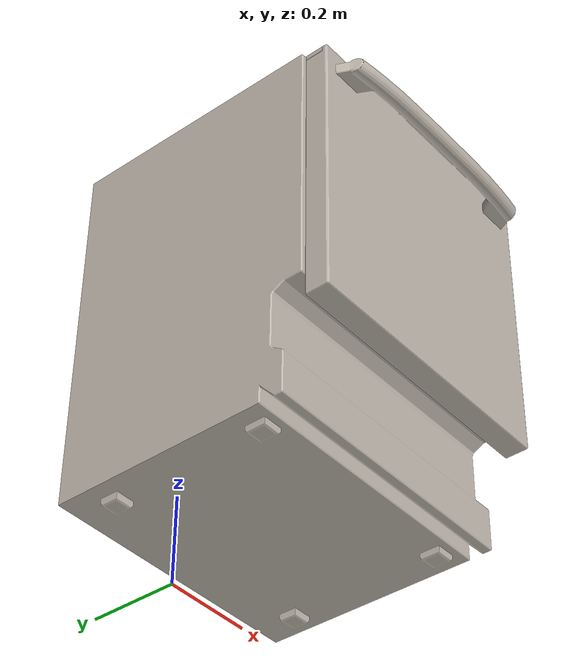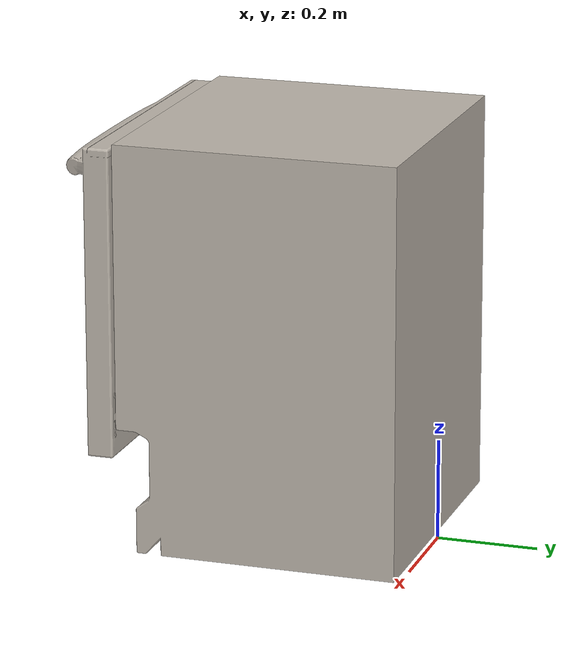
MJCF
<?xml version="1.0" encoding="utf-8"?>
<mujoco model="dishwasher">
  <compiler angle="radian" meshdir="assets" texturedir="assets" autolimits="true"/>
  <asset>
    <texture type="2d" name="basket" file="basket.png"/>
    <texture type="2d" name="body" file="body.png"/>
    <texture type="2d" name="bottom" file="bottom.png"/>
    <texture type="2d" name="door" file="door.png"/>
    <texture type="2d" name="middle" file="middle.png"/>
    <material name="dishwasher" rgba="0.3 0.3 0.3 1"/>
    <material name="basket" texture="basket" rgba="0.3 0.3 0.3 1"/>
    <material name="body" texture="body"/>
    <material name="bottom" texture="bottom"/>
    <material name="door" texture="door"/>
    <material name="middle" texture="middle"/>
    <!-- body -->
    <mesh file="visual/dish_washer_body_001.obj"/>
    <!-- door -->
    <mesh file="visual/dish_washer_door_001.obj"/>
    <mesh file="collision/collision_door_001.obj"/>
    <mesh file="collision/collision_door_003.obj"/>
    <mesh file="collision/collision_door_004.obj"/>
    <mesh file="collision/collision_door_006.obj"/>
    <mesh file="collision/collision_door_007.obj"/>
    <mesh file="collision/collision_door_008.obj"/>
    <mesh file="collision/collision_door_009.obj"/>
    <!-- middle tray -->
    <mesh file="visual/dish_washer_mid_001.obj"/>
    <mesh file="collision/collision_tray_mid_001.obj"/>
    <mesh file="collision/collision_tray_mid_002.obj"/>
    <mesh file="collision/collision_tray_mid_003.obj"/>
    <mesh file="collision/collision_tray_mid_004.obj"/>
    <mesh file="collision/collision_tray_mid_005.obj"/>
    <mesh file="collision/collision_tray_mid_006.obj"/>
    <mesh file="collision/collision_tray_mid_007.obj"/>
    <mesh file="collision/collision_tray_mid_008.obj"/>
    <mesh file="collision/collision_tray_mid_009.obj"/>
    <mesh file="collision/collision_tray_mid_010.obj"/>
    <mesh file="collision/collision_tray_mid_011.obj"/>
    <mesh file="collision/collision_tray_mid_012.obj"/>
    <mesh file="collision/collision_tray_mid_013.obj"/>
    <mesh file="collision/collision_tray_mid_014.obj"/>
    <mesh file="collision/collision_tray_mid_015.obj"/>
    <mesh file="collision/collision_tray_mid_016.obj"/>
    <mesh file="collision/collision_tray_mid_017.obj"/>
    <mesh file="collision/collision_tray_mid_018.obj"/>
    <mesh file="collision/collision_tray_mid_019.obj"/>
    <mesh file="collision/collision_tray_mid_020.obj"/>
    <mesh file="collision/collision_tray_mid_021.obj"/>
    <mesh file="collision/collision_tray_mid_022.obj"/>
    <mesh file="collision/collision_tray_mid_023.obj"/>
    <mesh file="collision/collision_tray_mid_024.obj"/>
    <mesh file="collision/collision_tray_mid_025.obj"/>
    <mesh file="collision/collision_tray_mid_026.obj"/>
    <mesh file="collision/collision_tray_mid_027.obj"/>
    <!-- middle tray plates holder -->
    <mesh file="collision/collision_tray_mid_plates_holder.obj"/>
    <!-- middle tray sprinkler -->
    <mesh file="visual/dish_washer_mid_sprinkle.obj"/>
    <mesh file="collision/collision_dish_washer_mid_sprinkle.obj"/>
    <!-- bottom tray -->
    <mesh file="visual/dish_washer_bottom_001.obj"/>
    <mesh file="collision/collision_tray_001.obj"/>
    <mesh file="collision/collision_tray_002.obj"/>
    <mesh file="collision/collision_tray_003.obj"/>
    <mesh file="collision/collision_tray_004.obj"/>
    <mesh file="collision/collision_tray_005.obj"/>
    <mesh file="collision/collision_tray_006.obj"/>
    <mesh file="collision/collision_tray_007.obj"/>
    <mesh file="collision/collision_tray_008.obj"/>
    <mesh file="collision/collision_tray_009.obj"/>
    <mesh file="collision/collision_tray_010.obj"/>
    <mesh file="collision/collision_tray_011.obj"/>
    <mesh file="collision/collision_tray_012.obj"/>
    <mesh file="collision/collision_tray_013.obj"/>
    <mesh file="collision/collision_tray_014.obj"/>
    <mesh file="collision/collision_tray_015.obj"/>
    <mesh file="collision/collision_tray_016.obj"/>
    <mesh file="collision/collision_tray_017.obj"/>
    <mesh file="collision/collision_tray_018.obj"/>
    <mesh file="collision/collision_tray_019.obj"/>
    <mesh file="collision/collision_tray_020.obj"/>
    <mesh file="collision/collision_tray_021.obj"/>
    <mesh file="collision/collision_tray_022.obj"/>
    <mesh file="collision/collision_tray_023.obj"/>
    <mesh file="collision/collision_tray_024.obj"/>
    <mesh file="collision/collision_tray_025.obj"/>
    <mesh file="collision/collision_tray_026.obj"/>
    <mesh file="collision/collision_tray_027.obj"/>
    <mesh file="collision/collision_tray_028.obj"/>
    <mesh file="collision/collision_tray_029.obj"/>
    <mesh file="collision/collision_tray_030.obj"/>
    <mesh file="collision/collision_tray_031.obj"/>
    <mesh file="collision/collision_tray_032.obj"/>
    <mesh file="collision/collision_tray_033.obj"/>
    <!-- bottom tray wheel -->
    <mesh file="visual/dish_washer_bottom_wheel.obj"/>
    <!-- bottom tray plates holder -->
    <mesh file="visual/dish_washer_bottom_plates_holder_001.obj"/>
    <mesh file="collision/collision_holder_001.obj"/>
    <mesh file="collision/collision_holder_002.obj"/>
    <mesh file="collision/collision_holder_003.obj"/>
    <mesh file="collision/collision_holder_004.obj"/>
    <mesh file="collision/collision_holder_005.obj"/>
    <mesh file="collision/collision_holder_006.obj"/>
    <mesh file="collision/collision_holder_007.obj"/>
    <mesh file="collision/collision_holder_008.obj"/>
    <mesh file="collision/collision_holder_009.obj"/>
    <mesh file="collision/collision_holder_010.obj"/>
    <mesh file="collision/collision_holder_011.obj"/>
    <mesh file="collision/collision_holder_012.obj"/>
    <mesh file="collision/collision_holder_013.obj"/>
    <mesh file="collision/collision_holder_014.obj"/>
    <!-- bottom tray basket -->
    <mesh file="visual/dish_washer_bottom_cuttlery_basket_001.obj"/>
    <mesh file="collision/collision_dish_washer_bottom_basket_001.obj"/>
    <mesh file="collision/collision_dish_washer_bottom_basket_002.obj"/>
    <mesh file="collision/collision_dish_washer_bottom_basket_003.obj"/>
    <mesh file="collision/collision_dish_washer_bottom_basket_004.obj"/>
    <mesh file="collision/collision_dish_washer_bottom_basket_005.obj"/>
    <mesh file="collision/collision_dish_washer_bottom_basket_006.obj"/>
    <mesh file="collision/collision_dish_washer_bottom_basket_007.obj"/>
    <mesh file="collision/collision_dish_washer_bottom_basket_008.obj"/>
    <mesh file="collision/collision_dish_washer_bottom_basket_009.obj"/>
    <mesh file="collision/collision_dish_washer_bottom_basket_010.obj"/>
    <mesh file="collision/collision_dish_washer_bottom_basket_011.obj"/>
    <mesh file="collision/collision_dish_washer_bottom_basket_012.obj"/>
    <mesh file="collision/collision_dish_washer_bottom_basket_013.obj"/>
    <mesh file="collision/collision_dish_washer_bottom_basket_014.obj"/>
    <mesh file="collision/collision_dish_washer_bottom_basket_015.obj"/>
  </asset>
  <default>
    <default class="dishwasher">
      <default class="visual">
        <geom type="mesh" contype="0" conaffinity="0" group="2" mass="0"/>
      </default>
      <default class="collision">
        <geom type="mesh" group="3" friction="0.1" solimp="0.998 0.998 0.001" solref="0.004 1" density="1"/>
      </default>
      <default class="collision_basket">
        <geom type="mesh" group="3" friction="0.1" solimp="0.998 0.998 0.001" solref="0.004 1" density="1"/>
      </default>
      <default class="collision_holder">
        <geom type="mesh" group="3" friction="0.1" solimp="0.998 0.998 0.001" solref="0.004 1" density="1"/>
      </default>
      <site size="0.001" rgba="0.5 0.5 0.5 0.3" group="4"/>
    </default>
  </default>
  <worldbody>
    <body name="dishwasher_body" childclass="dishwasher">
      <geom material="body" mesh="dish_washer_body_001" class="visual" euler="1.5708 0 0"/>
      <geom pos="0 -0.258 0.129" size="0.3 0.258 0.129" type="box" class="collision"/>
      <geom pos="0 -0.278 0.269" size="0.3 0.278 0.011" type="box" class="collision"/>
      <geom pos="0.286 -0.278 0.531" size="0.014 0.278 0.274" type="box" class="collision"/>
      <geom pos="-0.286 -0.278 0.531" size="0.014 0.278 0.274" type="box" class="collision"/>
      <geom pos="0 -0.008 0.531" size="0.3 0.008 0.274" type="box" class="collision"/>
      <geom pos="0 -0.278 0.808" size="0.3 0.278 0.0128" type="box" class="collision"/>
      <body name="door" pos="0 -0.57 0.245" euler="1.5708 0 0">
        <joint name="door_hinge" axis="1 0 0" range="0 1.5708" damping="0.01" solimplimit="0.998 0.998 0.001" solreflimit="0.004 1"/>
        <inertial mass="0.01" pos="0 0 0" quat="1 0 0 0" diaginertia="0.0001 0.0001 0.0001"/>
        <geom material="door" mesh="dish_washer_door_001" class="visual"/>
        <geom pos="0 0.517 0.086" size="0.019 0.28" type="cylinder" class="collision" euler="0 1.5708 0"/>
        <geom pos="0.238 0.517 0.06" size="0.031 0.025 0.014" type="box" class="collision" euler="1.5708 0 0"/>
        <geom pos="-0.238 0.517 0.06" size="0.031 0.025 0.014" type="box" class="collision" euler="1.5708 0 0"/>
        <geom pos="0 0.261 0.03" size="0.295 0.016 0.295" type="box" class="collision" euler="1.5708 0 0"/>
        <geom pos="0 0.546 0.0192" size="0.295 0.02603 0.019" type="box" class="collision" euler="1.5708 0 0"/>
        <geom pos="0 0.0148 0.0192" size="0.295 0.02603 0.0584" type="box" class="collision" euler="1.5708 0 0"/>
        <geom pos="0.275 0.2606 0.0192" size="0.0216 0.02603 0.295" type="box" class="collision" euler="1.5708 0 0"/>
        <geom pos="-0.275 0.2606 0.0192" size="0.0216 0.02603 0.295" type="box" class="collision" euler="1.5708 0 0"/>
        <geom mesh="collision_door_001" class="collision"/>
        <geom mesh="collision_door_003" class="collision"/>
        <geom mesh="collision_door_004" class="collision"/>
        <geom mesh="collision_door_006" class="collision"/>
        <geom mesh="collision_door_007" class="collision"/>
        <geom mesh="collision_door_008" class="collision"/>
        <geom mesh="collision_door_009" class="collision"/>
      </body>
      <body name="tray_mid" pos="0 -0.248 0.6" euler="1.5708 0 0">
        <joint name="tray_mid_linear" type="slide" axis="0 0 1" range="0 0.45" damping="5" solimplimit="0.998 0.998 0.001" solreflimit="0.004 1"/>
        <geom material="middle" mesh="dish_washer_mid_001" class="visual"/>
        <geom mesh="collision_tray_mid_001" class="collision"/>
        <geom mesh="collision_tray_mid_002" class="collision"/>
        <geom mesh="collision_tray_mid_003" class="collision"/>
        <geom mesh="collision_tray_mid_004" class="collision"/>
        <geom mesh="collision_tray_mid_005" class="collision"/>
        <geom mesh="collision_tray_mid_006" class="collision"/>
        <geom mesh="collision_tray_mid_007" class="collision"/>
        <geom mesh="collision_tray_mid_008" class="collision"/>
        <geom mesh="collision_tray_mid_009" class="collision"/>
        <geom mesh="collision_tray_mid_010" class="collision"/>
        <geom mesh="collision_tray_mid_011" class="collision"/>
        <geom mesh="collision_tray_mid_012" class="collision"/>
        <geom mesh="collision_tray_mid_013" class="collision"/>
        <geom mesh="collision_tray_mid_014" class="collision"/>
        <geom mesh="collision_tray_mid_015" class="collision"/>
        <geom mesh="collision_tray_mid_016" class="collision"/>
        <geom mesh="collision_tray_mid_017" class="collision"/>
        <geom mesh="collision_tray_mid_018" class="collision"/>
        <geom mesh="collision_tray_mid_019" class="collision"/>
        <geom mesh="collision_tray_mid_020" class="collision"/>
        <geom mesh="collision_tray_mid_021" class="collision"/>
        <geom mesh="collision_tray_mid_022" class="collision"/>
        <geom mesh="collision_tray_mid_023" class="collision"/>
        <geom mesh="collision_tray_mid_024" class="collision"/>
        <geom mesh="collision_tray_mid_025" class="collision"/>
        <geom mesh="collision_tray_mid_026" class="collision"/>
        <geom mesh="collision_tray_mid_027" class="collision"/>
        <!-- plates holders -->
        <body name="dish_washer_mid_holder_1" pos="0.085 0.0025 0" euler="0 1.5708 0">
          <geom material="dishwasher" mesh="dish_washer_bottom_plates_holder_001" class="visual"/>
          <geom mesh="collision_holder_001" class="collision_holder"/>
          <geom mesh="collision_holder_002" class="collision_holder"/>
          <geom mesh="collision_holder_003" class="collision_holder"/>
          <geom mesh="collision_holder_004" class="collision_holder"/>
          <geom mesh="collision_holder_005" class="collision_holder"/>
          <geom mesh="collision_holder_006" class="collision_holder"/>
          <geom mesh="collision_holder_007" class="collision_holder"/>
          <geom mesh="collision_holder_008" class="collision_holder"/>
          <geom mesh="collision_holder_009" class="collision_holder"/>
          <geom mesh="collision_holder_010" class="collision_holder"/>
          <geom mesh="collision_holder_011" class="collision_holder"/>
          <geom mesh="collision_holder_012" class="collision_holder"/>
          <geom mesh="collision_holder_013" class="collision_holder"/>
          <geom mesh="collision_holder_014" class="collision_holder"/>
          <site name="tray_mid_holder_sites_1_1" pos="-0.165 0.1 0"/>
          <site name="tray_mid_holder_sites_1_2" pos="-0.135 0.1 0"/>
          <site name="tray_mid_holder_sites_1_3" pos="-0.105 0.1 0"/>
          <site name="tray_mid_holder_sites_1_4" pos="-0.075 0.1 0"/>
          <site name="tray_mid_holder_sites_1_5" pos="-0.045 0.1 0"/>
          <site name="tray_mid_holder_sites_1_6" pos="-0.015 0.1 0"/>
          <site name="tray_mid_holder_sites_1_7" pos="0.015 0.1 0"/>
          <site name="tray_mid_holder_sites_1_8" pos="0.045 0.1 0"/>
          <site name="tray_mid_holder_sites_1_9" pos="0.075 0.1 0"/>
          <site name="tray_mid_holder_sites_1_10" pos="0.105 0.1 0"/>
          <site name="tray_mid_holder_sites_1_11" pos="0.135 0.1 0"/>
          <site name="tray_mid_holder_sites_1_12" pos="0.165 0.1 0"/>
        </body>
        <body name="dish_washer_mid_holder_2" pos="-0.085 0.0025 0" euler="0 1.5708 0">
          <geom material="dishwasher" mesh="dish_washer_bottom_plates_holder_001" class="visual"/>
          <geom mesh="collision_holder_001" class="collision_holder"/>
          <geom mesh="collision_holder_002" class="collision_holder"/>
          <geom mesh="collision_holder_003" class="collision_holder"/>
          <geom mesh="collision_holder_004" class="collision_holder"/>
          <geom mesh="collision_holder_005" class="collision_holder"/>
          <geom mesh="collision_holder_006" class="collision_holder"/>
          <geom mesh="collision_holder_007" class="collision_holder"/>
          <geom mesh="collision_holder_008" class="collision_holder"/>
          <geom mesh="collision_holder_009" class="collision_holder"/>
          <geom mesh="collision_holder_010" class="collision_holder"/>
          <geom mesh="collision_holder_011" class="collision_holder"/>
          <geom mesh="collision_holder_012" class="collision_holder"/>
          <geom mesh="collision_holder_013" class="collision_holder"/>
          <geom mesh="collision_holder_014" class="collision_holder"/>
          <site name="tray_mid_holder_sites_2_1" pos="-0.165 0.1 0"/>
          <site name="tray_mid_holder_sites_2_2" pos="-0.135 0.1 0"/>
          <site name="tray_mid_holder_sites_2_3" pos="-0.105 0.1 0"/>
          <site name="tray_mid_holder_sites_2_4" pos="-0.075 0.1 0"/>
          <site name="tray_mid_holder_sites_2_5" pos="-0.045 0.1 0"/>
          <site name="tray_mid_holder_sites_2_6" pos="-0.015 0.1 0"/>
          <site name="tray_mid_holder_sites_2_7" pos="0.015 0.1 0"/>
          <site name="tray_mid_holder_sites_2_8" pos="0.045 0.1 0"/>
          <site name="tray_mid_holder_sites_2_9" pos="0.075 0.1 0"/>
          <site name="tray_mid_holder_sites_2_10" pos="0.105 0.1 0"/>
          <site name="tray_mid_holder_sites_2_11" pos="0.135 0.1 0"/>
          <site name="tray_mid_holder_sites_2_12" pos="0.165 0.1 0"/>
        </body>
        <!-- sprinkler -->
        <body name="tray_mid_sprinkler" pos="0 -0.029338 0">
          <joint name="tray_mid_sprinkler" axis="0 1 0" limited="false" damping="0.001"/>
          <inertial mass="0.01" pos="0 0 0" quat="1 0 0 0" diaginertia="0.001 0.001 0.001"/>
          <geom material="dishwasher" mesh="dish_washer_mid_sprinkle" class="visual"/>
          <geom mesh="collision_dish_washer_mid_sprinkle" class="collision"/>
        </body>
      </body>
      <body name="tray_bottom" pos="0 -0.309 0.35" euler="1.5708 0 0">
        <joint name="tray_bottom_linear" type="slide" axis="0 0 1" range="0 0.5" damping="5" solimplimit="0.998 0.998 0.001" solreflimit="0.004 1"/>
        <geom material="bottom" mesh="dish_washer_bottom_001" class="visual"/>
        <geom mesh="collision_tray_001" class="collision"/>
        <geom mesh="collision_tray_002" class="collision"/>
        <geom mesh="collision_tray_003" class="collision"/>
        <geom mesh="collision_tray_004" class="collision"/>
        <geom mesh="collision_tray_005" class="collision"/>
        <geom mesh="collision_tray_006" class="collision"/>
        <geom mesh="collision_tray_007" class="collision"/>
        <geom mesh="collision_tray_008" class="collision"/>
        <geom mesh="collision_tray_009" class="collision"/>
        <geom mesh="collision_tray_010" class="collision"/>
        <geom mesh="collision_tray_011" class="collision"/>
        <geom mesh="collision_tray_012" class="collision"/>
        <geom mesh="collision_tray_013" class="collision"/>
        <geom mesh="collision_tray_014" class="collision"/>
        <geom mesh="collision_tray_015" class="collision"/>
        <geom mesh="collision_tray_016" class="collision"/>
        <geom mesh="collision_tray_017" class="collision"/>
        <geom mesh="collision_tray_018" class="collision"/>
        <geom mesh="collision_tray_019" class="collision"/>
        <geom mesh="collision_tray_020" class="collision"/>
        <geom mesh="collision_tray_021" class="collision"/>
        <geom mesh="collision_tray_022" class="collision"/>
        <geom mesh="collision_tray_023" class="collision"/>
        <geom mesh="collision_tray_024" class="collision"/>
        <geom mesh="collision_tray_025" class="collision"/>
        <geom mesh="collision_tray_026" class="collision"/>
        <geom mesh="collision_tray_027" class="collision"/>
        <geom mesh="collision_tray_028" class="collision"/>
        <geom mesh="collision_tray_029" class="collision"/>
        <geom mesh="collision_tray_030" class="collision"/>
        <geom mesh="collision_tray_031" class="collision"/>
        <geom mesh="collision_tray_032" class="collision"/>
        <geom mesh="collision_tray_033" class="collision"/>
        <!-- plates holders -->
        <body name="dish_washer_bottom_holder_1" pos="-0.047521 -0.048164 0.145" euler="0.523599 0 0">
          <geom material="dishwasher" mesh="dish_washer_bottom_plates_holder_001" class="visual"/>
          <geom mesh="collision_holder_001" class="collision_holder"/>
          <geom mesh="collision_holder_002" class="collision_holder"/>
          <geom mesh="collision_holder_003" class="collision_holder"/>
          <geom mesh="collision_holder_004" class="collision_holder"/>
          <geom mesh="collision_holder_005" class="collision_holder"/>
          <geom mesh="collision_holder_006" class="collision_holder"/>
          <geom mesh="collision_holder_007" class="collision_holder"/>
          <geom mesh="collision_holder_008" class="collision_holder"/>
          <geom mesh="collision_holder_009" class="collision_holder"/>
          <geom mesh="collision_holder_010" class="collision_holder"/>
          <geom mesh="collision_holder_011" class="collision_holder"/>
          <geom mesh="collision_holder_012" class="collision_holder"/>
          <geom mesh="collision_holder_013" class="collision_holder"/>
          <geom mesh="collision_holder_014" class="collision_holder"/>
        </body>
        <body name="dish_washer_bottom_holder_2" pos="-0.047521 -0.048164 0.088794" euler="-0.523599 0 0">
          <geom material="dishwasher" mesh="dish_washer_bottom_plates_holder_001" class="visual"/>
          <geom mesh="collision_holder_001" class="collision_holder"/>
          <geom mesh="collision_holder_002" class="collision_holder"/>
          <geom mesh="collision_holder_003" class="collision_holder"/>
          <geom mesh="collision_holder_004" class="collision_holder"/>
          <geom mesh="collision_holder_005" class="collision_holder"/>
          <geom mesh="collision_holder_006" class="collision_holder"/>
          <geom mesh="collision_holder_007" class="collision_holder"/>
          <geom mesh="collision_holder_008" class="collision_holder"/>
          <geom mesh="collision_holder_009" class="collision_holder"/>
          <geom mesh="collision_holder_010" class="collision_holder"/>
          <geom mesh="collision_holder_011" class="collision_holder"/>
          <geom mesh="collision_holder_012" class="collision_holder"/>
          <geom mesh="collision_holder_013" class="collision_holder"/>
          <geom mesh="collision_holder_014" class="collision_holder"/>
        </body>
        <body name="dish_washer_bottom_holder_3" pos="-0.047521 -0.048164 -0.1133" euler="0.523599 0 0">
          <geom material="dishwasher" mesh="dish_washer_bottom_plates_holder_001" class="visual"/>
          <geom mesh="collision_holder_001" class="collision_holder"/>
          <geom mesh="collision_holder_002" class="collision_holder"/>
          <geom mesh="collision_holder_003" class="collision_holder"/>
          <geom mesh="collision_holder_004" class="collision_holder"/>
          <geom mesh="collision_holder_005" class="collision_holder"/>
          <geom mesh="collision_holder_006" class="collision_holder"/>
          <geom mesh="collision_holder_007" class="collision_holder"/>
          <geom mesh="collision_holder_008" class="collision_holder"/>
          <geom mesh="collision_holder_009" class="collision_holder"/>
          <geom mesh="collision_holder_010" class="collision_holder"/>
          <geom mesh="collision_holder_011" class="collision_holder"/>
          <geom mesh="collision_holder_012" class="collision_holder"/>
          <geom mesh="collision_holder_013" class="collision_holder"/>
          <geom mesh="collision_holder_014" class="collision_holder"/>
        </body>
        <body name="dish_washer_bottom_holder_4" pos="-0.047521 -0.048164 -0.189036" euler="-0.523599 0 0">
          <geom material="dishwasher" mesh="dish_washer_bottom_plates_holder_001" class="visual"/>
          <geom mesh="collision_holder_001" class="collision_holder"/>
          <geom mesh="collision_holder_002" class="collision_holder"/>
          <geom mesh="collision_holder_003" class="collision_holder"/>
          <geom mesh="collision_holder_004" class="collision_holder"/>
          <geom mesh="collision_holder_005" class="collision_holder"/>
          <geom mesh="collision_holder_006" class="collision_holder"/>
          <geom mesh="collision_holder_007" class="collision_holder"/>
          <geom mesh="collision_holder_008" class="collision_holder"/>
          <geom mesh="collision_holder_009" class="collision_holder"/>
          <geom mesh="collision_holder_010" class="collision_holder"/>
          <geom mesh="collision_holder_011" class="collision_holder"/>
          <geom mesh="collision_holder_012" class="collision_holder"/>
          <geom mesh="collision_holder_013" class="collision_holder"/>
          <geom mesh="collision_holder_014" class="collision_holder"/>
        </body>
        <body name="tray_bottom_holder_sites_1" pos="-0.047521 -0.048164 0.1169">
          <site name="tray_bottom_holder_1_1" pos="-0.165 0.1 0"/>
          <site name="tray_bottom_holder_1_2" pos="-0.135 0.1 0"/>
          <site name="tray_bottom_holder_1_3" pos="-0.105 0.1 0"/>
          <site name="tray_bottom_holder_1_4" pos="-0.075 0.1 0"/>
          <site name="tray_bottom_holder_1_5" pos="-0.045 0.1 0"/>
          <site name="tray_bottom_holder_1_6" pos="-0.015 0.1 0"/>
          <site name="tray_bottom_holder_1_7" pos="0.015 0.1 0"/>
          <site name="tray_bottom_holder_1_8" pos="0.045 0.1 0"/>
          <site name="tray_bottom_holder_1_9" pos="0.075 0.1 0"/>
          <site name="tray_bottom_holder_1_10" pos="0.105 0.1 0"/>
          <site name="tray_bottom_holder_1_11" pos="0.135 0.1 0"/>
          <site name="tray_bottom_holder_1_12" pos="0.165 0.1 0"/>
        </body>
        <body name="tray_bottom_holder_sites_2" pos="-0.047521 -0.048164 -0.1512">
          <site name="tray_bottom_holder_2_1" pos="-0.165 0.1 0"/>
          <site name="tray_bottom_holder_2_2" pos="-0.135 0.1 0"/>
          <site name="tray_bottom_holder_2_3" pos="-0.105 0.1 0"/>
          <site name="tray_bottom_holder_2_4" pos="-0.075 0.1 0"/>
          <site name="tray_bottom_holder_2_5" pos="-0.045 0.1 0"/>
          <site name="tray_bottom_holder_2_6" pos="-0.015 0.1 0"/>
          <site name="tray_bottom_holder_2_7" pos="0.015 0.1 0"/>
          <site name="tray_bottom_holder_2_8" pos="0.045 0.1 0"/>
          <site name="tray_bottom_holder_2_9" pos="0.075 0.1 0"/>
          <site name="tray_bottom_holder_2_10" pos="0.105 0.1 0"/>
          <site name="tray_bottom_holder_2_11" pos="0.135 0.1 0"/>
          <site name="tray_bottom_holder_2_12" pos="0.165 0.1 0"/>
        </body>
        <!-- wheels -->
        <body name="dish_washer_bottom_wheel_1_l" pos="0.250505 -0.049095 0.139046">
          <geom material="dishwasher" mesh="dish_washer_bottom_wheel" class="visual"/>
          <geom mesh="dish_washer_bottom_wheel" class="collision"/>
        </body>
        <body name="dish_washer_bottom_wheel_2_l" pos="0.250505 -0.049095 0.040992">
          <geom material="dishwasher" mesh="dish_washer_bottom_wheel" class="visual"/>
          <geom mesh="dish_washer_bottom_wheel" class="collision"/>
        </body>
        <body name="dish_washer_bottom_wheel_3_l" pos="0.250505 -0.049095 -0.087648">
          <geom material="dishwasher" mesh="dish_washer_bottom_wheel" class="visual"/>
          <geom mesh="dish_washer_bottom_wheel" class="collision"/>
        </body>
        <body name="dish_washer_bottom_wheel_4_l" pos="0.250505 -0.049095 -0.190549">
          <geom material="dishwasher" mesh="dish_washer_bottom_wheel" class="visual"/>
          <geom mesh="dish_washer_bottom_wheel" class="collision"/>
        </body>
        <body name="dish_washer_bottom_wheel_1_r" pos="-0.250505 -0.049095 0.139046" euler="0 3.14159 0">
          <geom material="dishwasher" mesh="dish_washer_bottom_wheel" class="visual"/>
          <geom mesh="dish_washer_bottom_wheel" class="collision"/>
        </body>
        <body name="dish_washer_bottom_wheel_2_r" pos="-0.250505 -0.049095 0.040992" euler="0 3.14159 0">
          <geom material="dishwasher" mesh="dish_washer_bottom_wheel" class="visual"/>
          <geom mesh="dish_washer_bottom_wheel" class="collision"/>
        </body>
        <body name="dish_washer_bottom_wheel_3_r" pos="-0.250505 -0.049095 -0.087648" euler="0 3.14159 0">
          <geom material="dishwasher" mesh="dish_washer_bottom_wheel" class="visual"/>
          <geom mesh="dish_washer_bottom_wheel" class="collision"/>
        </body>
        <body name="dish_washer_bottom_wheel_4_r" pos="-0.250505 -0.049095 -0.190549" euler="0 3.14159 0">
          <geom material="dishwasher" mesh="dish_washer_bottom_wheel" class="visual"/>
          <geom mesh="dish_washer_bottom_wheel" class="collision"/>
        </body>
        <!-- basket -->
        <body name="cuttlery_basket" pos="0.218 0.030 -0.02">
          <geom material="basket" mesh="dish_washer_bottom_cuttlery_basket_001" class="visual"/>
          <geom mesh="collision_dish_washer_bottom_basket_001" class="collision_basket"/>
          <geom mesh="collision_dish_washer_bottom_basket_002" class="collision_basket"/>
          <geom mesh="collision_dish_washer_bottom_basket_003" class="collision_basket"/>
          <geom mesh="collision_dish_washer_bottom_basket_004" class="collision_basket"/>
          <geom mesh="collision_dish_washer_bottom_basket_005" class="collision_basket"/>
          <geom mesh="collision_dish_washer_bottom_basket_006" class="collision_basket"/>
          <geom mesh="collision_dish_washer_bottom_basket_007" class="collision_basket"/>
          <geom mesh="collision_dish_washer_bottom_basket_008" class="collision_basket"/>
          <geom mesh="collision_dish_washer_bottom_basket_009" class="collision_basket"/>
          <geom mesh="collision_dish_washer_bottom_basket_010" class="collision_basket"/>
          <geom mesh="collision_dish_washer_bottom_basket_011" class="collision_basket"/>
          <geom mesh="collision_dish_washer_bottom_basket_012" class="collision_basket"/>
          <geom mesh="collision_dish_washer_bottom_basket_013" class="collision_basket"/>
          <geom mesh="collision_dish_washer_bottom_basket_014" class="collision_basket"/>
          <geom mesh="collision_dish_washer_bottom_basket_015" class="collision_basket"/>
          <site name="cuttlery_basket_1" pos="-0.018 0.05 -0.185"/>
          <site name="cuttlery_basket_2" pos="-0.018 0.05 -0.115"/>
          <site name="cuttlery_basket_3" pos="-0.018 0.05 -0.045"/>
          <site name="cuttlery_basket_4" pos="-0.018 0.05 0.045"/>
          <site name="cuttlery_basket_5" pos="-0.018 0.05 0.115"/>
          <site name="cuttlery_basket_6" pos="-0.018 0.05 0.185"/>
        </body>
      </body>
    </body>
  </worldbody>
  <contact>
    <exclude body1="dishwasher_body" body2="door"/>
    <exclude body1="dishwasher_body" body2="tray_mid"/>
    <exclude body1="dishwasher_body" body2="tray_bottom"/>
    <exclude body1="dish_washer_bottom_wheel_1_l" body2="dishwasher_body"/>
    <exclude body1="dish_washer_bottom_wheel_2_l" body2="dishwasher_body"/>
    <exclude body1="dish_washer_bottom_wheel_3_l" body2="dishwasher_body"/>
    <exclude body1="dish_washer_bottom_wheel_4_l" body2="dishwasher_body"/>
    <exclude body1="dish_washer_bottom_wheel_1_r" body2="dishwasher_body"/>
    <exclude body1="dish_washer_bottom_wheel_2_r" body2="dishwasher_body"/>
    <exclude body1="dish_washer_bottom_wheel_3_r" body2="dishwasher_body"/>
    <exclude body1="dish_washer_bottom_wheel_4_r" body2="dishwasher_body"/>
  </contact>
</mujoco>
